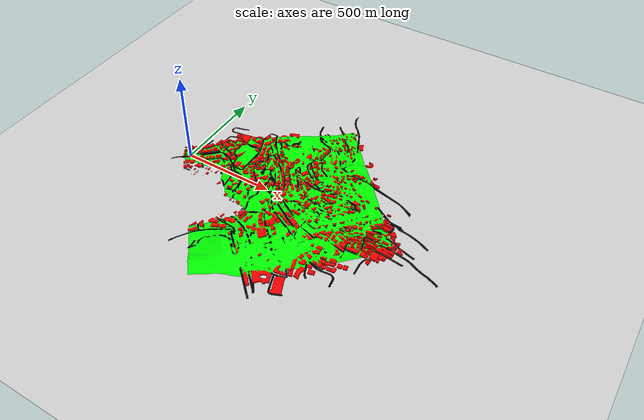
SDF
<?xml version="1.0" ?>
<sdf version="1.5">
  <world name="default">
    <include>
      <uri>model://ground_plane</uri>
    </include>
    <include>
      <uri>model://sun</uri>
    </include>
    <include>
      <uri>model://osm_1</uri>
      <name>osm_1</name>
      <pose>-0 0 -225 0 -0.2 0</pose>
    </include>
  </world>
</sdf>

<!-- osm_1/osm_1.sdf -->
<sdf version="1.5">
  <model name="osm_1">
    <static>true</static>
    <link name="l1">
      <collision name="c1">
        <geometry>
          <box>
            <size>0 0 0</size>
          </box>
        </geometry>
      </collision>
      <visual name="m1">
        <cast_shadows>true</cast_shadows>
        <geometry>
          <mesh>
            <uri>model://osm_1/meshes/TestFile1.dae</uri>
            <scale>1000 1000 1000</scale>
          </mesh>
        </geometry>
      </visual>
    </link>
  </model>
</sdf>
